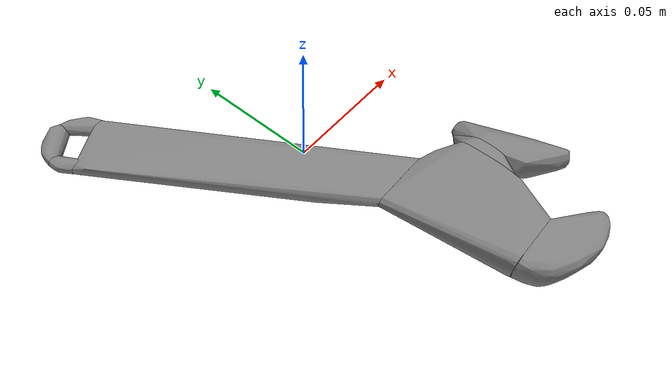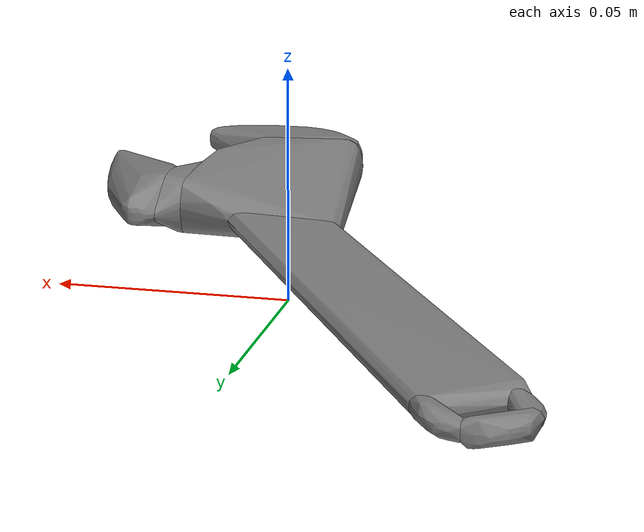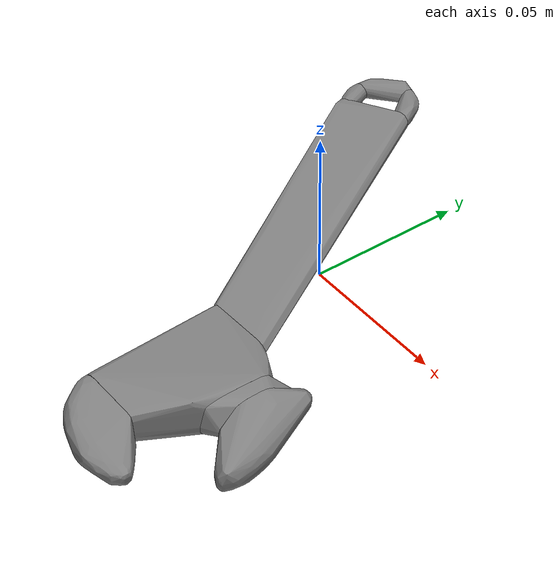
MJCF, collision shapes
<mujoco model="ycb_042_adjustable_wrench">
  <compiler meshdir="meshes" texturedir="meshes" angle="radian"/>
  <default>
    <default class="visual"><geom contype="0" conaffinity="0" group="2" density="0"/></default>
    <default class="collision"><geom group="3"/></default>
  </default>
  <asset>
    <texture name="ycb_042_adjustable_wrench_tex" type="2d" file="ycb_042_adjustable_wrench_texture.png"/>
    <material name="ycb_042_adjustable_wrench_mat" texture="ycb_042_adjustable_wrench_tex" specular="0.2" shininess="0.3"/>
    <mesh name="ycb_042_adjustable_wrench_visual" file="ycb_042_adjustable_wrench_visual.obj"/>
    <mesh name="ycb_042_adjustable_wrench_hull0" file="ycb_042_adjustable_wrench_hull0.obj"/>
    <mesh name="ycb_042_adjustable_wrench_hull1" file="ycb_042_adjustable_wrench_hull1.obj"/>
    <mesh name="ycb_042_adjustable_wrench_hull2" file="ycb_042_adjustable_wrench_hull2.obj"/>
    <mesh name="ycb_042_adjustable_wrench_hull3" file="ycb_042_adjustable_wrench_hull3.obj"/>
    <mesh name="ycb_042_adjustable_wrench_hull4" file="ycb_042_adjustable_wrench_hull4.obj"/>
    <mesh name="ycb_042_adjustable_wrench_hull5" file="ycb_042_adjustable_wrench_hull5.obj"/>
    <mesh name="ycb_042_adjustable_wrench_hull6" file="ycb_042_adjustable_wrench_hull6.obj"/>
    <mesh name="ycb_042_adjustable_wrench_hull7" file="ycb_042_adjustable_wrench_hull7.obj"/>
  </asset>
  <worldbody>
    <body name="object" pos="0 0 0">
      <freejoint name="object_free"/>
      <geom type="mesh" mesh="ycb_042_adjustable_wrench_visual" material="ycb_042_adjustable_wrench_mat" class="visual"/>
      <geom type="mesh" mesh="ycb_042_adjustable_wrench_hull0" class="collision"/>
      <geom type="mesh" mesh="ycb_042_adjustable_wrench_hull1" class="collision"/>
      <geom type="mesh" mesh="ycb_042_adjustable_wrench_hull2" class="collision"/>
      <geom type="mesh" mesh="ycb_042_adjustable_wrench_hull3" class="collision"/>
      <geom type="mesh" mesh="ycb_042_adjustable_wrench_hull4" class="collision"/>
      <geom type="mesh" mesh="ycb_042_adjustable_wrench_hull5" class="collision"/>
      <geom type="mesh" mesh="ycb_042_adjustable_wrench_hull6" class="collision"/>
      <geom type="mesh" mesh="ycb_042_adjustable_wrench_hull7" class="collision"/>
    </body>
  </worldbody>
</mujoco>
